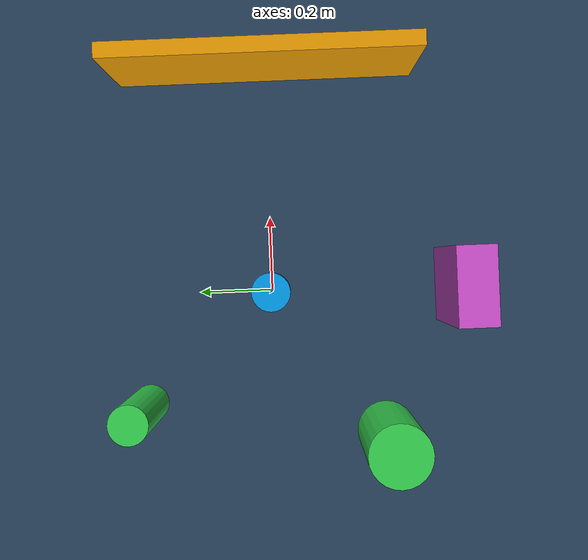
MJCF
<mujoco model="rangefinder_sensor">
  <statistic center="0 0 0.1" extent="0.6" meansize=".05"/>

  <visual>
    <headlight diffuse="0.6 0.6 0.6" ambient="0.3 0.3 0.3" specular="0 0 0"/>
    <rgba haze="0.15 0.25 0.35 1"/>
    <global azimuth="-20" elevation="-20" ellipsoidinertia="true"/>
  </visual>

  <asset>
    <texture type="skybox" builtin="gradient" rgb1="0.3 0.5 0.7" rgb2="0 0 0" width="512" height="3072"/>
    <texture type="2d" name="groundplane" builtin="checker" mark="edge" rgb1="0.2 0.3 0.4" rgb2="0.1 0.2 0.3"
      markrgb="0.8 0.8 0.8" width="300" height="300"/>
    <material name="groundplane" texture="groundplane" texuniform="true" texrepeat="5 5" reflectance="0.2"/>
  </asset>

  <!-- implicitfast keeps the velocity servo stable on the low-inertia scanner head. -->
  <option gravity="0 0 -9.81" timestep="0.002" integrator="implicitfast"/>

  <default>
    <joint damping="0.05"/>
  </default>

  <worldbody>
    <light pos="0 0 1.5" dir="0 0 -1" directional="true"/>
    <geom name="floor" size="0 0 0.05" type="plane" material="groundplane"/>

    <!-- Obstacles around the scanner. -->
    <geom name="wall" type="box" pos="0.6 0 0.15" size="0.02 0.4 0.15" rgba="0.9 0.6 0 1"/>
    <geom name="pillar1" type="cylinder" pos="-0.3 0.35 0.15" size="0.05 0.15" rgba="0.2 0.8 0.3 1"/>
    <geom name="pillar2" type="cylinder" pos="-0.4 -0.3 0.15" size="0.08 0.15" rgba="0.2 0.8 0.3 1"/>
    <geom name="block" type="box" pos="0 -0.5 0.15" size="0.1 0.05 0.15" rgba="0.8 0.3 0.8 1"/>

    <geom name="post" type="cylinder" pos="0 0 0.05" size="0.04 0.05" rgba="0.5 0.5 0.5 1" contype="0" conaffinity="0"/>

    <body name="scanner" pos="0 0 0.15">
      <joint name="spin" type="hinge" axis="0 0 1"/>
      <geom name="head" type="cylinder" size="0.05 0.03" rgba="0 0.6 0.9 1" mass="0.2" contype="0" conaffinity="0"/>
      <site name="beam0" pos="0 0 0" zaxis="1 0 0" size="0.005" rgba="1 0.3 0 1"/>
      <site name="beam1" pos="0 0 0" zaxis="0.7071 0.7071 0" size="0.005" rgba="1 0.3 0 1"/>
      <site name="beam2" pos="0 0 0" zaxis="0 1 0" size="0.005" rgba="1 0.3 0 1"/>
      <site name="beam3" pos="0 0 0" zaxis="-0.7071 0.7071 0" size="0.005" rgba="1 0.3 0 1"/>
      <site name="beam4" pos="0 0 0" zaxis="-1 0 0" size="0.005" rgba="1 0.3 0 1"/>
      <site name="beam5" pos="0 0 0" zaxis="-0.7071 -0.7071 0" size="0.005" rgba="1 0.3 0 1"/>
      <site name="beam6" pos="0 0 0" zaxis="0 -1 0" size="0.005" rgba="1 0.3 0 1"/>
      <site name="beam7" pos="0 0 0" zaxis="0.7071 -0.7071 0" size="0.005" rgba="1 0.3 0 1"/>
    </body>
  </worldbody>

  <sensor>
    <rangefinder name="range0" site="beam0" cutoff="2"/>
    <rangefinder name="range1" site="beam1" cutoff="2"/>
    <rangefinder name="range2" site="beam2" cutoff="2"/>
    <rangefinder name="range3" site="beam3" cutoff="2"/>
    <rangefinder name="range4" site="beam4" cutoff="2"/>
    <rangefinder name="range5" site="beam5" cutoff="2"/>
    <rangefinder name="range6" site="beam6" cutoff="2"/>
    <rangefinder name="range7" site="beam7" cutoff="2"/>
    <jointpos name="spin_angle" joint="spin"/>
  </sensor>

  <actuator>
    <velocity name="spin_servo" joint="spin" kv="0.5" ctrlrange="-3 3"/>
  </actuator>
</mujoco>
